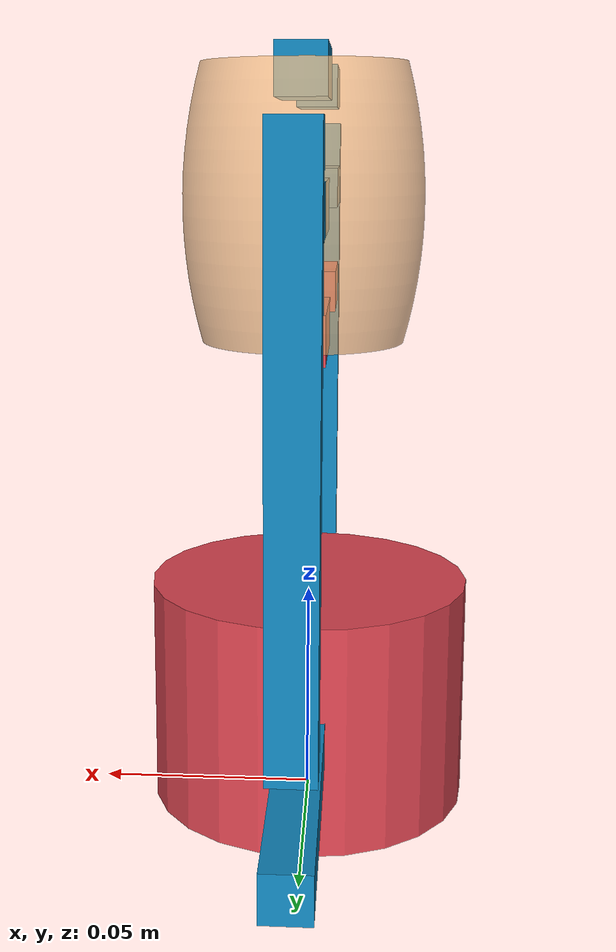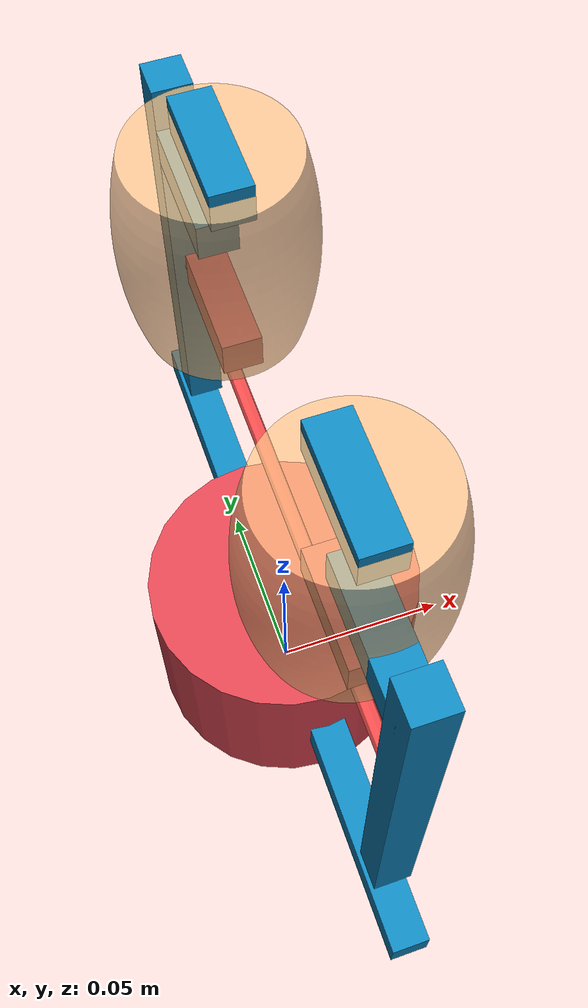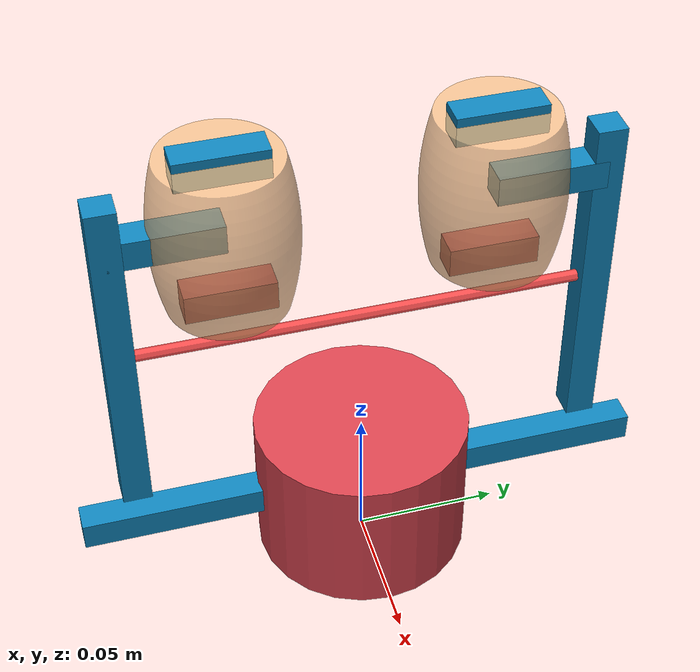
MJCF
<mujoco>
  <compiler angle="radian" coordinate="local" meshdir="../meshes" texturedir="../textures" />

  <visual>
    <quality shadowsize="4096" />
  </visual>

  <size njmax="500" nconmax="200" />

  <asset>
    <mesh name="roller" file="roller.stl" scale="1 1 1" />
    <mesh name="cube" file="cube.stl" scale="1 1 1" />
    <mesh name="cube2" file="cube2.stl" scale="1 1 1" />
    <mesh name="rectangle" file="rectangle.stl" scale="1 1 1" />
    <mesh name="rectangle2" file="rectangle2.stl" scale="1 1 1" />
    <texture builtin="none" name="cube_tex" height="32" width="32" rgb1="1 1 1" type="cube" file="wood.png"></texture>
    <material name="cube" texture="cube_tex" />
    <texture builtin="none" name="rubik_tex" height="32" width="32" rgb1="1 1 1" type="cube" file="rubik.png"></texture>
    <material name="rubik" texture="rubik_tex" />
  </asset>

  <default>
    <mesh scale="0.001 0.001 0.001" />
    <joint limited="true" damping="0.1" armature="0.005" margin="0.0" frictionloss="0.1" />
    <general ctrllimited="true" ctrlrange="-1 1" />
    <default class="visual">
      <geom contype="0" conaffinity="0" group="0" />
    </default>
    <default class="collision">
      <geom group="3" />
    </default>
  </default>

  <worldbody>
    <body name="forearm" pos="0 0 0.026625">
      <geom mass="0.1" pos="0 0 0" rgba="0.855 0.267 0.314 1" size="0.0375 0.026625" type="cylinder" />
      <geom name="crossbar" mass="0.01" size="0.005 0.1 0.005" rgba="0.063 0.522 0.737 1" type="box" />
      <joint axis="0 0 1" damping="0.5" name="hand_z" pos="0.0 0.0 0" type="hinge" range="-1.57 1.57" />
      <!-- Left -->
      <body name="l1" pos="0.0 -0.08 0.073525">
        <joint axis="0 1 0" damping="0.1" name="finger_l" pos="0.0 0.05 -0.043525" type="slide" range="-0.02 0.02" />
        <geom name="l1" mass="0.01" size="0.005 0.005 0.06" rgba="0.063 0.522 0.737 1" type="box" />
        <site name="sl" pos="0 0 0"/>
        <body name="l2" pos="0.0 0.0184 0.043525">
          <joint axis="0 1 0" damping="0.5" name="pitch_l" pos="0.0 -0.0184 0" type="hinge" range="-1.57 1.57" />
          <geom name="l2" mass="0.01" size="0.005 0.0184 0.005" rgba="0.063 0.522 0.737 1" type="box" />
          <body name="l3" pos="0.0 0.0184 0.0">
            <joint axis="0 0 1" damping="0.1" range="-1000000 1000000" name="roll_l" pos="0.0 0 0" type="hinge" />
            <geom name="l3" mass="0.01" type="mesh" mesh="roller" rgba="0.973 0.741 0.498 0.7" />
            <body name="l3_visual_aid_top" pos="0 0 -0.025">
              <geom name="l3_visual_aid_top" mass="0" type="box" size="0.005 0.015 0.005" rgba="0.855 0.267 0.314 1" />
            </body>
            <body name="l3_visual_aid_bottom" pos="0 0 0.025">
              <geom name="l3_visual_aid_bottom" mass="0" type="box" size="0.005 0.015 0.005" rgba="0.063 0.522 0.737 1" />
            </body>
          </body>
        </body>
      </body>

      <!-- Right -->
      <body name="r1" pos="0.0 0.08 0.073525">
        <joint axis="0 -1 0" damping="0.1" name="finger_r" pos="0.0 -0.05 -0.043525" type="slide" range="-0.02 0.02" />
        <geom name="r1" mass="0.01" size="0.005 0.005 0.06" rgba="0.063 0.522 0.737 1" type="box" />
        <site name="sr" pos="0 0 0"/>
        <body name="r2" pos="0.0 -0.0184 0.043525">
          <joint axis="0 1 0" damping="0.5" name="pitch_r" pos="0.0 -0.0184 0" type="hinge" range="-1.57 1.57" />
          <geom name="r2" mass="0.01" size="0.005 0.0184 0.005" rgba="0.063 0.522 0.737 1" type="box" />
          <body name="r3" pos="0.0 -0.0184 0.0">
            <joint axis="0 0 1" damping="0.1" name="roll_r" pos="0.0 0 0" range="-1000000 1000000" type="hinge" />
            <geom name="r3" mass="0.01" type="mesh" mesh="roller" rgba="0.973 0.741 0.498 0.7" />
            <body name="r3_visual_aid_top" pos="0 0 -0.025">
              <geom name="r3_visual_aid_top" mass="0" type="box" size="0.005 0.015 0.005" rgba="0.855 0.267 0.314 1" />
            </body>
            <body name="r3_visual_aid_bottom" pos="0 0 0.025">
              <geom name="r3_visual_aid_bottom" mass="0" type="box" size="0.005 0.015 0.005" rgba="0.063 0.522 0.737 1" />
            </body>
          </body>
        </body>
      </body>
    </body>

  </worldbody>

  <actuator>
    <velocity name="motor_hand_z" joint="hand_z" ctrlrange="-4 4"/>

    <velocity name="motor_pitch_l" joint="pitch_l" ctrlrange="-4 4"/>
    <velocity name="motor_roll_l" joint="roll_l" ctrlrange="-4 4"/>

    <velocity name="motor_pitch_r" joint="pitch_r" ctrlrange="-4 4"/>
    <velocity name="motor_roll_r" joint="roll_r" ctrlrange="-4 4"/>
  </actuator>

  <contact>
    <exclude body1="l1" body2="l2" />
    <exclude body1="l2" body2="l3" />

    <exclude body1="l3" body2="l3_visual_aid_top" />
    <exclude body1="l3" body2="l3_visual_aid_bottom" />

    <exclude body1="r1" body2="r2" />
    <exclude body1="r2" body2="r3" />

    <exclude body1="r3" body2="r3_visual_aid_top" />
    <exclude body1="r3" body2="r3_visual_aid_bottom" />

  </contact>

  <tendon>
    <spatial width="0.002" rgba=".95 .3 .3 1" springlength="0.00" damping="0.01" stiffness="1">
      <site site="sl"/>
      <site site="sr"/>
    </spatial>
  </tendon>
</mujoco>
